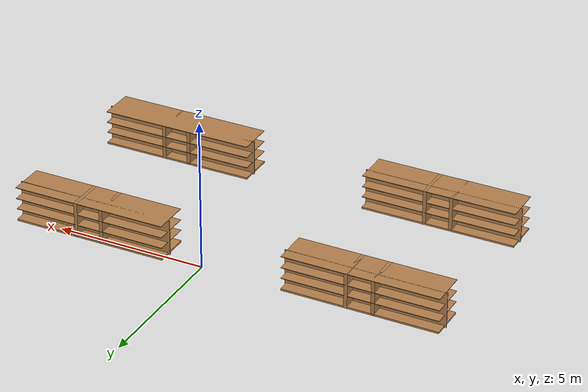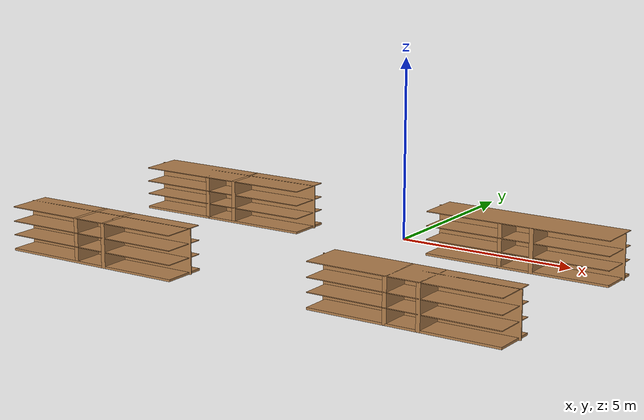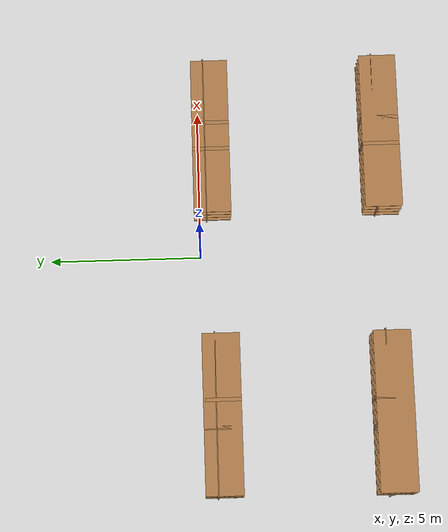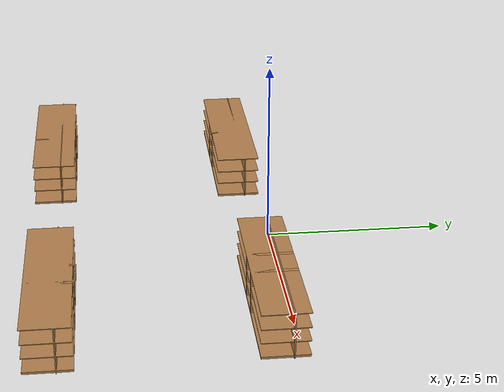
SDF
<sdf version="1.6">
 <world name="default">
  <model name="bookshelf1_clone_4_clone">
   <link name="link">
    <pose>-5.30085 4.14714 0 0 -0 0</pose>
    <inertial>
     <mass>18.106</mass>
     <inertia><ixx>0</ixx><ixy>0</ixy><ixz>0</ixz><iyy>0</iyy><iyz>0</iyz><izz>0</izz></inertia>
    </inertial>
    <velocity_decay><linear>0</linear><angular>0</angular></velocity_decay>
    <visual name="visual1">
     <pose>0 0.005 0.6 0 -0 0</pose>
     <geometry><box><size>5.34173 0.029897 1.2</size></box></geometry>
     <material>
      <script><uri>file://media/materials/scripts/gazebo.material</uri><name>Gazebo/Wood</name></script>
      <ambient>1 1 1 1</ambient>
      <diffuse>1 1 1 1</diffuse>
      <specular>0.2 0.2 0.2 1</specular>
      <emissive>0 0 0 1</emissive>
      <shader type="vertex"><normal_map>__default__</normal_map></shader>
     </material>
    </visual>
    <visual name="visual2">
     <pose>0.45 -0.195 0.6 0 -0 0</pose>
     <geometry><box><size>0.118103 1.22649 1.2</size></box></geometry>
     <material>
      <script><uri>file://media/materials/scripts/gazebo.material</uri><name>Gazebo/Wood</name></script>
      <ambient>1 1 1 1</ambient>
      <diffuse>1 1 1 1</diffuse>
      <specular>0.2 0.2 0.2 1</specular>
      <emissive>0 0 0 1</emissive>
      <shader type="vertex"><normal_map>__default__</normal_map></shader>
     </material>
    </visual>
    <visual name="visual3">
     <pose>-0.45 -0.195 0.6 0 -0 0</pose>
     <geometry><box><size>0.118103 1.22649 1.2</size></box></geometry>
     <material>
      <script><uri>file://media/materials/scripts/gazebo.material</uri><name>Gazebo/Wood</name></script>
      <ambient>1 1 1 1</ambient>
      <diffuse>1 1 1 1</diffuse>
      <specular>0.2 0.2 0.2 1</specular>
      <emissive>0 0 0 1</emissive>
      <shader type="vertex"><normal_map>__default__</normal_map></shader>
     </material>
    </visual>
    <visual name="visual4">
     <pose>0 -0.195 0.03 0 -0 0</pose>
     <geometry><box><size>5.22302 1.22649 0.06</size></box></geometry>
     <material>
      <script><uri>file://media/materials/scripts/gazebo.material</uri><name>Gazebo/Wood</name></script>
      <ambient>1 1 1 1</ambient>
      <diffuse>1 1 1 1</diffuse>
      <specular>0.2 0.2 0.2 1</specular>
      <emissive>0 0 0 1</emissive>
      <shader type="vertex"><normal_map>__default__</normal_map></shader>
     </material>
    </visual>
    <visual name="visual5">
     <pose>0 -0.195 1.19 0 -0 0</pose>
     <geometry><box><size>5.22302 1.22649 0.02</size></box></geometry>
     <material>
      <script><uri>file://media/materials/scripts/gazebo.material</uri><name>Gazebo/Wood</name></script>
      <ambient>1 1 1 1</ambient>
      <diffuse>1 1 1 1</diffuse>
      <specular>0.2 0.2 0.2 1</specular>
      <emissive>0 0 0 1</emissive>
      <shader type="vertex"><normal_map>__default__</normal_map></shader>
     </material>
    </visual>
    <visual name="visual6">
     <pose>0 -0.195 0.43 0 -0 0</pose>
     <geometry><box><size>5.22302 1.22649 0.02</size></box></geometry>
     <material>
      <script><uri>file://media/materials/scripts/gazebo.material</uri><name>Gazebo/Wood</name></script>
      <ambient>1 1 1 1</ambient>
      <diffuse>1 1 1 1</diffuse>
      <specular>0.2 0.2 0.2 1</specular>
      <emissive>0 0 0 1</emissive>
      <shader type="vertex"><normal_map>__default__</normal_map></shader>
     </material>
    </visual>
    <visual name="visual7">
     <pose>0 -0.195 0.8 0 -0 0</pose>
     <geometry><box><size>5.22302 1.22649 0.02</size></box></geometry>
     <material>
      <script><uri>file://media/materials/scripts/gazebo.material</uri><name>Gazebo/Wood</name></script>
      <ambient>1 1 1 1</ambient>
      <diffuse>1 1 1 1</diffuse>
      <specular>0.2 0.2 0.2 1</specular>
      <emissive>0 0 0 1</emissive>
      <shader type="vertex"><normal_map>__default__</normal_map></shader>
     </material>
    </visual>
    <collision name="left_side">
     <pose>0.45 -0.195 0.6 0 -0 0</pose>
     <geometry><box><size>0.118103 1.22649 1.2</size></box></geometry>
     <surface>
      <friction>
       <ode><mu>1</mu><mu2>1</mu2><fdir1>0 0 0</fdir1><slip1>0</slip1><slip2>0</slip2></ode>
       <torsional>
        <coefficient>1</coefficient>
        <patch_radius>0</patch_radius>
        <surface_radius>0</surface_radius>
        <use_patch_radius>1</use_patch_radius>
        <ode><slip>0</slip></ode>
       </torsional>
      </friction>
      <bounce><restitution_coefficient>0</restitution_coefficient><threshold>1e+06</threshold></bounce>
      <contact>
       <collide_without_contact>0</collide_without_contact>
       <collide_without_contact_bitmask>1</collide_without_contact_bitmask>
       <collide_bitmask>1</collide_bitmask>
       <ode>
        <soft_cfm>0</soft_cfm>
        <soft_erp>0.2</soft_erp>
        <kp>1e+13</kp>
        <kd>1</kd>
        <max_vel>0.01</max_vel>
        <min_depth>0</min_depth>
       </ode>
       <bullet>
        <split_impulse>1</split_impulse>
        <split_impulse_penetration_threshold>-0.01</split_impulse_penetration_threshold>
        <soft_cfm>0</soft_cfm>
        <soft_erp>0.2</soft_erp>
        <kp>1e+13</kp>
        <kd>1</kd>
       </bullet>
      </contact>
     </surface>
    </collision>
    <collision name="back">
     <pose>0 0.005 0.6 0 -0 0</pose>
     <geometry><box><size>5.34173 0.029897 1.2</size></box></geometry>
     <surface>
      <friction>
       <ode><mu>1</mu><mu2>1</mu2><fdir1>0 0 0</fdir1><slip1>0</slip1><slip2>0</slip2></ode>
       <torsional>
        <coefficient>1</coefficient>
        <patch_radius>0</patch_radius>
        <surface_radius>0</surface_radius>
        <use_patch_radius>1</use_patch_radius>
        <ode><slip>0</slip></ode>
       </torsional>
      </friction>
      <bounce><restitution_coefficient>0</restitution_coefficient><threshold>1e+06</threshold></bounce>
      <contact>
       <collide_without_contact>0</collide_without_contact>
       <collide_without_contact_bitmask>1</collide_without_contact_bitmask>
       <collide_bitmask>1</collide_bitmask>
       <ode>
        <soft_cfm>0</soft_cfm>
        <soft_erp>0.2</soft_erp>
        <kp>1e+13</kp>
        <kd>1</kd>
        <max_vel>0.01</max_vel>
        <min_depth>0</min_depth>
       </ode>
       <bullet>
        <split_impulse>1</split_impulse>
        <split_impulse_penetration_threshold>-0.01</split_impulse_penetration_threshold>
        <soft_cfm>0</soft_cfm>
        <soft_erp>0.2</soft_erp>
        <kp>1e+13</kp>
        <kd>1</kd>
       </bullet>
      </contact>
     </surface>
    </collision>
    <collision name="right_side">
     <pose>-0.45 -0.195 0.6 0 -0 0</pose>
     <geometry><box><size>0.118103 1.22649 1.2</size></box></geometry>
     <surface>
      <friction>
       <ode><mu>1</mu><mu2>1</mu2><fdir1>0 0 0</fdir1><slip1>0</slip1><slip2>0</slip2></ode>
       <torsional>
        <coefficient>1</coefficient>
        <patch_radius>0</patch_radius>
        <surface_radius>0</surface_radius>
        <use_patch_radius>1</use_patch_radius>
        <ode><slip>0</slip></ode>
       </torsional>
      </friction>
      <bounce><restitution_coefficient>0</restitution_coefficient><threshold>1e+06</threshold></bounce>
      <contact>
       <collide_without_contact>0</collide_without_contact>
       <collide_without_contact_bitmask>1</collide_without_contact_bitmask>
       <collide_bitmask>1</collide_bitmask>
       <ode>
        <soft_cfm>0</soft_cfm>
        <soft_erp>0.2</soft_erp>
        <kp>1e+13</kp>
        <kd>1</kd>
        <max_vel>0.01</max_vel>
        <min_depth>0</min_depth>
       </ode>
       <bullet>
        <split_impulse>1</split_impulse>
        <split_impulse_penetration_threshold>-0.01</split_impulse_penetration_threshold>
        <soft_cfm>0</soft_cfm>
        <soft_erp>0.2</soft_erp>
        <kp>1e+13</kp>
        <kd>1</kd>
       </bullet>
      </contact>
     </surface>
    </collision>
    <collision name="bottom">
     <pose>0 -0.195 0.03 0 -0 0</pose>
     <geometry><box><size>5.22302 1.22649 0.06</size></box></geometry>
     <surface>
      <friction>
       <ode><mu>1</mu><mu2>1</mu2><fdir1>0 0 0</fdir1><slip1>0</slip1><slip2>0</slip2></ode>
       <torsional>
        <coefficient>1</coefficient>
        <patch_radius>0</patch_radius>
        <surface_radius>0</surface_radius>
        <use_patch_radius>1</use_patch_radius>
        <ode><slip>0</slip></ode>
       </torsional>
      </friction>
      <bounce><restitution_coefficient>0</restitution_coefficient><threshold>1e+06</threshold></bounce>
      <contact>
       <collide_without_contact>0</collide_without_contact>
       <collide_without_contact_bitmask>1</collide_without_contact_bitmask>
       <collide_bitmask>1</collide_bitmask>
       <ode>
        <soft_cfm>0</soft_cfm>
        <soft_erp>0.2</soft_erp>
        <kp>1e+13</kp>
        <kd>1</kd>
        <max_vel>0.01</max_vel>
        <min_depth>0</min_depth>
       </ode>
       <bullet>
        <split_impulse>1</split_impulse>
        <split_impulse_penetration_threshold>-0.01</split_impulse_penetration_threshold>
        <soft_cfm>0</soft_cfm>
        <soft_erp>0.2</soft_erp>
        <kp>1e+13</kp>
        <kd>1</kd>
       </bullet>
      </contact>
     </surface>
    </collision>
    <collision name="low_shelf">
     <pose>0 -0.195 0.43 0 -0 0</pose>
     <geometry><box><size>5.22302 1.22649 0.02</size></box></geometry>
     <surface>
      <friction>
       <ode><mu>1</mu><mu2>1</mu2><fdir1>0 0 0</fdir1><slip1>0</slip1><slip2>0</slip2></ode>
       <torsional>
        <coefficient>1</coefficient>
        <patch_radius>0</patch_radius>
        <surface_radius>0</surface_radius>
        <use_patch_radius>1</use_patch_radius>
        <ode><slip>0</slip></ode>
       </torsional>
      </friction>
      <bounce><restitution_coefficient>0</restitution_coefficient><threshold>1e+06</threshold></bounce>
      <contact>
       <collide_without_contact>0</collide_without_contact>
       <collide_without_contact_bitmask>1</collide_without_contact_bitmask>
       <collide_bitmask>1</collide_bitmask>
       <ode>
        <soft_cfm>0</soft_cfm>
        <soft_erp>0.2</soft_erp>
        <kp>1e+13</kp>
        <kd>1</kd>
        <max_vel>0.01</max_vel>
        <min_depth>0</min_depth>
       </ode>
       <bullet>
        <split_impulse>1</split_impulse>
        <split_impulse_penetration_threshold>-0.01</split_impulse_penetration_threshold>
        <soft_cfm>0</soft_cfm>
        <soft_erp>0.2</soft_erp>
        <kp>1e+13</kp>
        <kd>1</kd>
       </bullet>
      </contact>
     </surface>
    </collision>
    <collision name="top">
     <pose>0 -0.195 1.19 0 -0 0</pose>
     <geometry><box><size>5.22302 1.22649 0.02</size></box></geometry>
     <surface>
      <friction>
       <ode><mu>1</mu><mu2>1</mu2><fdir1>0 0 0</fdir1><slip1>0</slip1><slip2>0</slip2></ode>
       <torsional>
        <coefficient>1</coefficient>
        <patch_radius>0</patch_radius>
        <surface_radius>0</surface_radius>
        <use_patch_radius>1</use_patch_radius>
        <ode><slip>0</slip></ode>
       </torsional>
      </friction>
      <bounce><restitution_coefficient>0</restitution_coefficient><threshold>1e+06</threshold></bounce>
      <contact>
       <collide_without_contact>0</collide_without_contact>
       <collide_without_contact_bitmask>1</collide_without_contact_bitmask>
       <collide_bitmask>1</collide_bitmask>
       <ode>
        <soft_cfm>0</soft_cfm>
        <soft_erp>0.2</soft_erp>
        <kp>1e+13</kp>
        <kd>1</kd>
        <max_vel>0.01</max_vel>
        <min_depth>0</min_depth>
       </ode>
       <bullet>
        <split_impulse>1</split_impulse>
        <split_impulse_penetration_threshold>-0.01</split_impulse_penetration_threshold>
        <soft_cfm>0</soft_cfm>
        <soft_erp>0.2</soft_erp>
        <kp>1e+13</kp>
        <kd>1</kd>
       </bullet>
      </contact>
     </surface>
    </collision>
    <collision name="high_shelf">
     <pose>0 -0.195 0.8 0 -0 0</pose>
     <geometry><box><size>5.22302 1.22649 0.02</size></box></geometry>
     <surface>
      <friction>
       <ode><mu>1</mu><mu2>1</mu2><fdir1>0 0 0</fdir1><slip1>0</slip1><slip2>0</slip2></ode>
       <torsional>
        <coefficient>1</coefficient>
        <patch_radius>0</patch_radius>
        <surface_radius>0</surface_radius>
        <use_patch_radius>1</use_patch_radius>
        <ode><slip>0</slip></ode>
       </torsional>
      </friction>
      <bounce><restitution_coefficient>0</restitution_coefficient><threshold>1e+06</threshold></bounce>
      <contact>
       <collide_without_contact>0</collide_without_contact>
       <collide_without_contact_bitmask>1</collide_without_contact_bitmask>
       <collide_bitmask>1</collide_bitmask>
       <ode>
        <soft_cfm>0</soft_cfm>
        <soft_erp>0.2</soft_erp>
        <kp>1e+13</kp>
        <kd>1</kd>
        <max_vel>0.01</max_vel>
        <min_depth>0</min_depth>
       </ode>
       <bullet>
        <split_impulse>1</split_impulse>
        <split_impulse_penetration_threshold>-0.01</split_impulse_penetration_threshold>
        <soft_cfm>0</soft_cfm>
        <soft_erp>0.2</soft_erp>
        <kp>1e+13</kp>
        <kd>1</kd>
       </bullet>
      </contact>
     </surface>
    </collision>
   </link>
   <static>1</static>
   <pose>9.20317 -4.37233 0 0 -0 0</pose>
  </model>
  <model name="bookshelf1_clone_4_clone_0">
   <link name="link">
    <pose>-5.30085 4.14714 0 0 -0 0</pose>
    <inertial>
     <mass>18.106</mass>
     <inertia><ixx>0</ixx><ixy>0</ixy><ixz>0</ixz><iyy>0</iyy><iyz>0</iyz><izz>0</izz></inertia>
    </inertial>
    <velocity_decay><linear>0</linear><angular>0</angular></velocity_decay>
    <visual name="visual1">
     <pose>0 0.005 0.6 0 -0 0</pose>
     <geometry><box><size>5.34173 0.029897 1.2</size></box></geometry>
     <material>
      <script><uri>file://media/materials/scripts/gazebo.material</uri><name>Gazebo/Wood</name></script>
      <ambient>1 1 1 1</ambient>
      <diffuse>1 1 1 1</diffuse>
      <specular>0.2 0.2 0.2 1</specular>
      <emissive>0 0 0 1</emissive>
      <shader type="vertex"><normal_map>__default__</normal_map></shader>
     </material>
    </visual>
    <visual name="visual2">
     <pose>0.45 -0.195 0.6 0 -0 0</pose>
     <geometry><box><size>0.118103 1.22649 1.2</size></box></geometry>
     <material>
      <script><uri>file://media/materials/scripts/gazebo.material</uri><name>Gazebo/Wood</name></script>
      <ambient>1 1 1 1</ambient>
      <diffuse>1 1 1 1</diffuse>
      <specular>0.2 0.2 0.2 1</specular>
      <emissive>0 0 0 1</emissive>
      <shader type="vertex"><normal_map>__default__</normal_map></shader>
     </material>
    </visual>
    <visual name="visual3">
     <pose>-0.45 -0.195 0.6 0 -0 0</pose>
     <geometry><box><size>0.118103 1.22649 1.2</size></box></geometry>
     <material>
      <script><uri>file://media/materials/scripts/gazebo.material</uri><name>Gazebo/Wood</name></script>
      <ambient>1 1 1 1</ambient>
      <diffuse>1 1 1 1</diffuse>
      <specular>0.2 0.2 0.2 1</specular>
      <emissive>0 0 0 1</emissive>
      <shader type="vertex"><normal_map>__default__</normal_map></shader>
     </material>
    </visual>
    <visual name="visual4">
     <pose>0 -0.195 0.03 0 -0 0</pose>
     <geometry><box><size>5.22302 1.22649 0.06</size></box></geometry>
     <material>
      <script><uri>file://media/materials/scripts/gazebo.material</uri><name>Gazebo/Wood</name></script>
      <ambient>1 1 1 1</ambient>
      <diffuse>1 1 1 1</diffuse>
      <specular>0.2 0.2 0.2 1</specular>
      <emissive>0 0 0 1</emissive>
      <shader type="vertex"><normal_map>__default__</normal_map></shader>
     </material>
    </visual>
    <visual name="visual5">
     <pose>0 -0.195 1.19 0 -0 0</pose>
     <geometry><box><size>5.22302 1.22649 0.02</size></box></geometry>
     <material>
      <script><uri>file://media/materials/scripts/gazebo.material</uri><name>Gazebo/Wood</name></script>
      <ambient>1 1 1 1</ambient>
      <diffuse>1 1 1 1</diffuse>
      <specular>0.2 0.2 0.2 1</specular>
      <emissive>0 0 0 1</emissive>
      <shader type="vertex"><normal_map>__default__</normal_map></shader>
     </material>
    </visual>
    <visual name="visual6">
     <pose>0 -0.195 0.43 0 -0 0</pose>
     <geometry><box><size>5.22302 1.22649 0.02</size></box></geometry>
     <material>
      <script><uri>file://media/materials/scripts/gazebo.material</uri><name>Gazebo/Wood</name></script>
      <ambient>1 1 1 1</ambient>
      <diffuse>1 1 1 1</diffuse>
      <specular>0.2 0.2 0.2 1</specular>
      <emissive>0 0 0 1</emissive>
      <shader type="vertex"><normal_map>__default__</normal_map></shader>
     </material>
    </visual>
    <visual name="visual7">
     <pose>0 -0.195 0.8 0 -0 0</pose>
     <geometry><box><size>5.22302 1.22649 0.02</size></box></geometry>
     <material>
      <script><uri>file://media/materials/scripts/gazebo.material</uri><name>Gazebo/Wood</name></script>
      <ambient>1 1 1 1</ambient>
      <diffuse>1 1 1 1</diffuse>
      <specular>0.2 0.2 0.2 1</specular>
      <emissive>0 0 0 1</emissive>
      <shader type="vertex"><normal_map>__default__</normal_map></shader>
     </material>
    </visual>
    <collision name="left_side">
     <pose>0.45 -0.195 0.6 0 -0 0</pose>
     <geometry><box><size>0.118103 1.22649 1.2</size></box></geometry>
     <surface>
      <friction>
       <ode><mu>1</mu><mu2>1</mu2><fdir1>0 0 0</fdir1><slip1>0</slip1><slip2>0</slip2></ode>
       <torsional>
        <coefficient>1</coefficient>
        <patch_radius>0</patch_radius>
        <surface_radius>0</surface_radius>
        <use_patch_radius>1</use_patch_radius>
        <ode><slip>0</slip></ode>
       </torsional>
      </friction>
      <bounce><restitution_coefficient>0</restitution_coefficient><threshold>1e+06</threshold></bounce>
      <contact>
       <collide_without_contact>0</collide_without_contact>
       <collide_without_contact_bitmask>1</collide_without_contact_bitmask>
       <collide_bitmask>1</collide_bitmask>
       <ode>
        <soft_cfm>0</soft_cfm>
        <soft_erp>0.2</soft_erp>
        <kp>1e+13</kp>
        <kd>1</kd>
        <max_vel>0.01</max_vel>
        <min_depth>0</min_depth>
       </ode>
       <bullet>
        <split_impulse>1</split_impulse>
        <split_impulse_penetration_threshold>-0.01</split_impulse_penetration_threshold>
        <soft_cfm>0</soft_cfm>
        <soft_erp>0.2</soft_erp>
        <kp>1e+13</kp>
        <kd>1</kd>
       </bullet>
      </contact>
     </surface>
    </collision>
    <collision name="back">
     <pose>0 0.005 0.6 0 -0 0</pose>
     <geometry><box><size>5.34173 0.029897 1.2</size></box></geometry>
     <surface>
      <friction>
       <ode><mu>1</mu><mu2>1</mu2><fdir1>0 0 0</fdir1><slip1>0</slip1><slip2>0</slip2></ode>
       <torsional>
        <coefficient>1</coefficient>
        <patch_radius>0</patch_radius>
        <surface_radius>0</surface_radius>
        <use_patch_radius>1</use_patch_radius>
        <ode><slip>0</slip></ode>
       </torsional>
      </friction>
      <bounce><restitution_coefficient>0</restitution_coefficient><threshold>1e+06</threshold></bounce>
      <contact>
       <collide_without_contact>0</collide_without_contact>
       <collide_without_contact_bitmask>1</collide_without_contact_bitmask>
       <collide_bitmask>1</collide_bitmask>
       <ode>
        <soft_cfm>0</soft_cfm>
        <soft_erp>0.2</soft_erp>
        <kp>1e+13</kp>
        <kd>1</kd>
        <max_vel>0.01</max_vel>
        <min_depth>0</min_depth>
       </ode>
       <bullet>
        <split_impulse>1</split_impulse>
        <split_impulse_penetration_threshold>-0.01</split_impulse_penetration_threshold>
        <soft_cfm>0</soft_cfm>
        <soft_erp>0.2</soft_erp>
        <kp>1e+13</kp>
        <kd>1</kd>
       </bullet>
      </contact>
     </surface>
    </collision>
    <collision name="right_side">
     <pose>-0.45 -0.195 0.6 0 -0 0</pose>
     <geometry><box><size>0.118103 1.22649 1.2</size></box></geometry>
     <surface>
      <friction>
       <ode><mu>1</mu><mu2>1</mu2><fdir1>0 0 0</fdir1><slip1>0</slip1><slip2>0</slip2></ode>
       <torsional>
        <coefficient>1</coefficient>
        <patch_radius>0</patch_radius>
        <surface_radius>0</surface_radius>
        <use_patch_radius>1</use_patch_radius>
        <ode><slip>0</slip></ode>
       </torsional>
      </friction>
      <bounce><restitution_coefficient>0</restitution_coefficient><threshold>1e+06</threshold></bounce>
      <contact>
       <collide_without_contact>0</collide_without_contact>
       <collide_without_contact_bitmask>1</collide_without_contact_bitmask>
       <collide_bitmask>1</collide_bitmask>
       <ode>
        <soft_cfm>0</soft_cfm>
        <soft_erp>0.2</soft_erp>
        <kp>1e+13</kp>
        <kd>1</kd>
        <max_vel>0.01</max_vel>
        <min_depth>0</min_depth>
       </ode>
       <bullet>
        <split_impulse>1</split_impulse>
        <split_impulse_penetration_threshold>-0.01</split_impulse_penetration_threshold>
        <soft_cfm>0</soft_cfm>
        <soft_erp>0.2</soft_erp>
        <kp>1e+13</kp>
        <kd>1</kd>
       </bullet>
      </contact>
     </surface>
    </collision>
    <collision name="bottom">
     <pose>0 -0.195 0.03 0 -0 0</pose>
     <geometry><box><size>5.22302 1.22649 0.06</size></box></geometry>
     <surface>
      <friction>
       <ode><mu>1</mu><mu2>1</mu2><fdir1>0 0 0</fdir1><slip1>0</slip1><slip2>0</slip2></ode>
       <torsional>
        <coefficient>1</coefficient>
        <patch_radius>0</patch_radius>
        <surface_radius>0</surface_radius>
        <use_patch_radius>1</use_patch_radius>
        <ode><slip>0</slip></ode>
       </torsional>
      </friction>
      <bounce><restitution_coefficient>0</restitution_coefficient><threshold>1e+06</threshold></bounce>
      <contact>
       <collide_without_contact>0</collide_without_contact>
       <collide_without_contact_bitmask>1</collide_without_contact_bitmask>
       <collide_bitmask>1</collide_bitmask>
       <ode>
        <soft_cfm>0</soft_cfm>
        <soft_erp>0.2</soft_erp>
        <kp>1e+13</kp>
        <kd>1</kd>
        <max_vel>0.01</max_vel>
        <min_depth>0</min_depth>
       </ode>
       <bullet>
        <split_impulse>1</split_impulse>
        <split_impulse_penetration_threshold>-0.01</split_impulse_penetration_threshold>
        <soft_cfm>0</soft_cfm>
        <soft_erp>0.2</soft_erp>
        <kp>1e+13</kp>
        <kd>1</kd>
       </bullet>
      </contact>
     </surface>
    </collision>
    <collision name="low_shelf">
     <pose>0 -0.195 0.43 0 -0 0</pose>
     <geometry><box><size>5.22302 1.22649 0.02</size></box></geometry>
     <surface>
      <friction>
       <ode><mu>1</mu><mu2>1</mu2><fdir1>0 0 0</fdir1><slip1>0</slip1><slip2>0</slip2></ode>
       <torsional>
        <coefficient>1</coefficient>
        <patch_radius>0</patch_radius>
        <surface_radius>0</surface_radius>
        <use_patch_radius>1</use_patch_radius>
        <ode><slip>0</slip></ode>
       </torsional>
      </friction>
      <bounce><restitution_coefficient>0</restitution_coefficient><threshold>1e+06</threshold></bounce>
      <contact>
       <collide_without_contact>0</collide_without_contact>
       <collide_without_contact_bitmask>1</collide_without_contact_bitmask>
       <collide_bitmask>1</collide_bitmask>
       <ode>
        <soft_cfm>0</soft_cfm>
        <soft_erp>0.2</soft_erp>
        <kp>1e+13</kp>
        <kd>1</kd>
        <max_vel>0.01</max_vel>
        <min_depth>0</min_depth>
       </ode>
       <bullet>
        <split_impulse>1</split_impulse>
        <split_impulse_penetration_threshold>-0.01</split_impulse_penetration_threshold>
        <soft_cfm>0</soft_cfm>
        <soft_erp>0.2</soft_erp>
        <kp>1e+13</kp>
        <kd>1</kd>
       </bullet>
      </contact>
     </surface>
    </collision>
    <collision name="top">
     <pose>0 -0.195 1.19 0 -0 0</pose>
     <geometry><box><size>5.22302 1.22649 0.02</size></box></geometry>
     <surface>
      <friction>
       <ode><mu>1</mu><mu2>1</mu2><fdir1>0 0 0</fdir1><slip1>0</slip1><slip2>0</slip2></ode>
       <torsional>
        <coefficient>1</coefficient>
        <patch_radius>0</patch_radius>
        <surface_radius>0</surface_radius>
        <use_patch_radius>1</use_patch_radius>
        <ode><slip>0</slip></ode>
       </torsional>
      </friction>
      <bounce><restitution_coefficient>0</restitution_coefficient><threshold>1e+06</threshold></bounce>
      <contact>
       <collide_without_contact>0</collide_without_contact>
       <collide_without_contact_bitmask>1</collide_without_contact_bitmask>
       <collide_bitmask>1</collide_bitmask>
       <ode>
        <soft_cfm>0</soft_cfm>
        <soft_erp>0.2</soft_erp>
        <kp>1e+13</kp>
        <kd>1</kd>
        <max_vel>0.01</max_vel>
        <min_depth>0</min_depth>
       </ode>
       <bullet>
        <split_impulse>1</split_impulse>
        <split_impulse_penetration_threshold>-0.01</split_impulse_penetration_threshold>
        <soft_cfm>0</soft_cfm>
        <soft_erp>0.2</soft_erp>
        <kp>1e+13</kp>
        <kd>1</kd>
       </bullet>
      </contact>
     </surface>
    </collision>
    <collision name="high_shelf">
     <pose>0 -0.195 0.8 0 -0 0</pose>
     <geometry><box><size>5.22302 1.22649 0.02</size></box></geometry>
     <surface>
      <friction>
       <ode><mu>1</mu><mu2>1</mu2><fdir1>0 0 0</fdir1><slip1>0</slip1><slip2>0</slip2></ode>
       <torsional>
        <coefficient>1</coefficient>
        <patch_radius>0</patch_radius>
        <surface_radius>0</surface_radius>
        <use_patch_radius>1</use_patch_radius>
        <ode><slip>0</slip></ode>
       </torsional>
      </friction>
      <bounce><restitution_coefficient>0</restitution_coefficient><threshold>1e+06</threshold></bounce>
      <contact>
       <collide_without_contact>0</collide_without_contact>
       <collide_without_contact_bitmask>1</collide_without_contact_bitmask>
       <collide_bitmask>1</collide_bitmask>
       <ode>
        <soft_cfm>0</soft_cfm>
        <soft_erp>0.2</soft_erp>
        <kp>1e+13</kp>
        <kd>1</kd>
        <max_vel>0.01</max_vel>
        <min_depth>0</min_depth>
       </ode>
       <bullet>
        <split_impulse>1</split_impulse>
        <split_impulse_penetration_threshold>-0.01</split_impulse_penetration_threshold>
        <soft_cfm>0</soft_cfm>
        <soft_erp>0.2</soft_erp>
        <kp>1e+13</kp>
        <kd>1</kd>
       </bullet>
      </contact>
     </surface>
    </collision>
   </link>
   <static>1</static>
   <pose>9.24091 -10.0132 0 0 -0 0</pose>
  </model>
  <model name="bookshelf1_clone_4_clone_1">
   <link name="link">
    <pose>-5.30085 4.14714 0 0 -0 0</pose>
    <inertial>
     <mass>18.106</mass>
     <inertia><ixx>0</ixx><ixy>0</ixy><ixz>0</ixz><iyy>0</iyy><iyz>0</iyz><izz>0</izz></inertia>
    </inertial>
    <velocity_decay><linear>0</linear><angular>0</angular></velocity_decay>
    <visual name="visual1">
     <pose>0 0.005 0.6 0 -0 0</pose>
     <geometry><box><size>5.34173 0.029897 1.2</size></box></geometry>
     <material>
      <script><uri>file://media/materials/scripts/gazebo.material</uri><name>Gazebo/Wood</name></script>
      <ambient>1 1 1 1</ambient>
      <diffuse>1 1 1 1</diffuse>
      <specular>0.2 0.2 0.2 1</specular>
      <emissive>0 0 0 1</emissive>
      <shader type="vertex"><normal_map>__default__</normal_map></shader>
     </material>
    </visual>
    <visual name="visual2">
     <pose>0.45 -0.195 0.6 0 -0 0</pose>
     <geometry><box><size>0.118103 1.22649 1.2</size></box></geometry>
     <material>
      <script><uri>file://media/materials/scripts/gazebo.material</uri><name>Gazebo/Wood</name></script>
      <ambient>1 1 1 1</ambient>
      <diffuse>1 1 1 1</diffuse>
      <specular>0.2 0.2 0.2 1</specular>
      <emissive>0 0 0 1</emissive>
      <shader type="vertex"><normal_map>__default__</normal_map></shader>
     </material>
    </visual>
    <visual name="visual3">
     <pose>-0.45 -0.195 0.6 0 -0 0</pose>
     <geometry><box><size>0.118103 1.22649 1.2</size></box></geometry>
     <material>
      <script><uri>file://media/materials/scripts/gazebo.material</uri><name>Gazebo/Wood</name></script>
      <ambient>1 1 1 1</ambient>
      <diffuse>1 1 1 1</diffuse>
      <specular>0.2 0.2 0.2 1</specular>
      <emissive>0 0 0 1</emissive>
      <shader type="vertex"><normal_map>__default__</normal_map></shader>
     </material>
    </visual>
    <visual name="visual4">
     <pose>0 -0.195 0.03 0 -0 0</pose>
     <geometry><box><size>5.22302 1.22649 0.06</size></box></geometry>
     <material>
      <script><uri>file://media/materials/scripts/gazebo.material</uri><name>Gazebo/Wood</name></script>
      <ambient>1 1 1 1</ambient>
      <diffuse>1 1 1 1</diffuse>
      <specular>0.2 0.2 0.2 1</specular>
      <emissive>0 0 0 1</emissive>
      <shader type="vertex"><normal_map>__default__</normal_map></shader>
     </material>
    </visual>
    <visual name="visual5">
     <pose>0 -0.195 1.19 0 -0 0</pose>
     <geometry><box><size>5.22302 1.22649 0.02</size></box></geometry>
     <material>
      <script><uri>file://media/materials/scripts/gazebo.material</uri><name>Gazebo/Wood</name></script>
      <ambient>1 1 1 1</ambient>
      <diffuse>1 1 1 1</diffuse>
      <specular>0.2 0.2 0.2 1</specular>
      <emissive>0 0 0 1</emissive>
      <shader type="vertex"><normal_map>__default__</normal_map></shader>
     </material>
    </visual>
    <visual name="visual6">
     <pose>0 -0.195 0.43 0 -0 0</pose>
     <geometry><box><size>5.22302 1.22649 0.02</size></box></geometry>
     <material>
      <script><uri>file://media/materials/scripts/gazebo.material</uri><name>Gazebo/Wood</name></script>
      <ambient>1 1 1 1</ambient>
      <diffuse>1 1 1 1</diffuse>
      <specular>0.2 0.2 0.2 1</specular>
      <emissive>0 0 0 1</emissive>
      <shader type="vertex"><normal_map>__default__</normal_map></shader>
     </material>
    </visual>
    <visual name="visual7">
     <pose>0 -0.195 0.8 0 -0 0</pose>
     <geometry><box><size>5.22302 1.22649 0.02</size></box></geometry>
     <material>
      <script><uri>file://media/materials/scripts/gazebo.material</uri><name>Gazebo/Wood</name></script>
      <ambient>1 1 1 1</ambient>
      <diffuse>1 1 1 1</diffuse>
      <specular>0.2 0.2 0.2 1</specular>
      <emissive>0 0 0 1</emissive>
      <shader type="vertex"><normal_map>__default__</normal_map></shader>
     </material>
    </visual>
    <collision name="left_side">
     <pose>0.45 -0.195 0.6 0 -0 0</pose>
     <geometry><box><size>0.118103 1.22649 1.2</size></box></geometry>
     <surface>
      <friction>
       <ode><mu>1</mu><mu2>1</mu2><fdir1>0 0 0</fdir1><slip1>0</slip1><slip2>0</slip2></ode>
       <torsional>
        <coefficient>1</coefficient>
        <patch_radius>0</patch_radius>
        <surface_radius>0</surface_radius>
        <use_patch_radius>1</use_patch_radius>
        <ode><slip>0</slip></ode>
       </torsional>
      </friction>
      <bounce><restitution_coefficient>0</restitution_coefficient><threshold>1e+06</threshold></bounce>
      <contact>
       <collide_without_contact>0</collide_without_contact>
       <collide_without_contact_bitmask>1</collide_without_contact_bitmask>
       <collide_bitmask>1</collide_bitmask>
       <ode>
        <soft_cfm>0</soft_cfm>
        <soft_erp>0.2</soft_erp>
        <kp>1e+13</kp>
        <kd>1</kd>
        <max_vel>0.01</max_vel>
        <min_depth>0</min_depth>
       </ode>
       <bullet>
        <split_impulse>1</split_impulse>
        <split_impulse_penetration_threshold>-0.01</split_impulse_penetration_threshold>
        <soft_cfm>0</soft_cfm>
        <soft_erp>0.2</soft_erp>
        <kp>1e+13</kp>
        <kd>1</kd>
       </bullet>
      </contact>
     </surface>
    </collision>
    <collision name="back">
     <pose>0 0.005 0.6 0 -0 0</pose>
     <geometry><box><size>5.34173 0.029897 1.2</size></box></geometry>
     <surface>
      <friction>
       <ode><mu>1</mu><mu2>1</mu2><fdir1>0 0 0</fdir1><slip1>0</slip1><slip2>0</slip2></ode>
       <torsional>
        <coefficient>1</coefficient>
        <patch_radius>0</patch_radius>
        <surface_radius>0</surface_radius>
        <use_patch_radius>1</use_patch_radius>
        <ode><slip>0</slip></ode>
       </torsional>
      </friction>
      <bounce><restitution_coefficient>0</restitution_coefficient><threshold>1e+06</threshold></bounce>
      <contact>
       <collide_without_contact>0</collide_without_contact>
       <collide_without_contact_bitmask>1</collide_without_contact_bitmask>
       <collide_bitmask>1</collide_bitmask>
       <ode>
        <soft_cfm>0</soft_cfm>
        <soft_erp>0.2</soft_erp>
        <kp>1e+13</kp>
        <kd>1</kd>
        <max_vel>0.01</max_vel>
        <min_depth>0</min_depth>
       </ode>
       <bullet>
        <split_impulse>1</split_impulse>
        <split_impulse_penetration_threshold>-0.01</split_impulse_penetration_threshold>
        <soft_cfm>0</soft_cfm>
        <soft_erp>0.2</soft_erp>
        <kp>1e+13</kp>
        <kd>1</kd>
       </bullet>
      </contact>
     </surface>
    </collision>
    <collision name="right_side">
     <pose>-0.45 -0.195 0.6 0 -0 0</pose>
     <geometry><box><size>0.118103 1.22649 1.2</size></box></geometry>
     <surface>
      <friction>
       <ode><mu>1</mu><mu2>1</mu2><fdir1>0 0 0</fdir1><slip1>0</slip1><slip2>0</slip2></ode>
       <torsional>
        <coefficient>1</coefficient>
        <patch_radius>0</patch_radius>
        <surface_radius>0</surface_radius>
        <use_patch_radius>1</use_patch_radius>
        <ode><slip>0</slip></ode>
       </torsional>
      </friction>
      <bounce><restitution_coefficient>0</restitution_coefficient><threshold>1e+06</threshold></bounce>
      <contact>
       <collide_without_contact>0</collide_without_contact>
       <collide_without_contact_bitmask>1</collide_without_contact_bitmask>
       <collide_bitmask>1</collide_bitmask>
       <ode>
        <soft_cfm>0</soft_cfm>
        <soft_erp>0.2</soft_erp>
        <kp>1e+13</kp>
        <kd>1</kd>
        <max_vel>0.01</max_vel>
        <min_depth>0</min_depth>
       </ode>
       <bullet>
        <split_impulse>1</split_impulse>
        <split_impulse_penetration_threshold>-0.01</split_impulse_penetration_threshold>
        <soft_cfm>0</soft_cfm>
        <soft_erp>0.2</soft_erp>
        <kp>1e+13</kp>
        <kd>1</kd>
       </bullet>
      </contact>
     </surface>
    </collision>
    <collision name="bottom">
     <pose>0 -0.195 0.03 0 -0 0</pose>
     <geometry><box><size>5.22302 1.22649 0.06</size></box></geometry>
     <surface>
      <friction>
       <ode><mu>1</mu><mu2>1</mu2><fdir1>0 0 0</fdir1><slip1>0</slip1><slip2>0</slip2></ode>
       <torsional>
        <coefficient>1</coefficient>
        <patch_radius>0</patch_radius>
        <surface_radius>0</surface_radius>
        <use_patch_radius>1</use_patch_radius>
        <ode><slip>0</slip></ode>
       </torsional>
      </friction>
      <bounce><restitution_coefficient>0</restitution_coefficient><threshold>1e+06</threshold></bounce>
      <contact>
       <collide_without_contact>0</collide_without_contact>
       <collide_without_contact_bitmask>1</collide_without_contact_bitmask>
       <collide_bitmask>1</collide_bitmask>
       <ode>
        <soft_cfm>0</soft_cfm>
        <soft_erp>0.2</soft_erp>
        <kp>1e+13</kp>
        <kd>1</kd>
        <max_vel>0.01</max_vel>
        <min_depth>0</min_depth>
       </ode>
       <bullet>
        <split_impulse>1</split_impulse>
        <split_impulse_penetration_threshold>-0.01</split_impulse_penetration_threshold>
        <soft_cfm>0</soft_cfm>
        <soft_erp>0.2</soft_erp>
        <kp>1e+13</kp>
        <kd>1</kd>
       </bullet>
      </contact>
     </surface>
    </collision>
    <collision name="low_shelf">
     <pose>0 -0.195 0.43 0 -0 0</pose>
     <geometry><box><size>5.22302 1.22649 0.02</size></box></geometry>
     <surface>
      <friction>
       <ode><mu>1</mu><mu2>1</mu2><fdir1>0 0 0</fdir1><slip1>0</slip1><slip2>0</slip2></ode>
       <torsional>
        <coefficient>1</coefficient>
        <patch_radius>0</patch_radius>
        <surface_radius>0</surface_radius>
        <use_patch_radius>1</use_patch_radius>
        <ode><slip>0</slip></ode>
       </torsional>
      </friction>
      <bounce><restitution_coefficient>0</restitution_coefficient><threshold>1e+06</threshold></bounce>
      <contact>
       <collide_without_contact>0</collide_without_contact>
       <collide_without_contact_bitmask>1</collide_without_contact_bitmask>
       <collide_bitmask>1</collide_bitmask>
       <ode>
        <soft_cfm>0</soft_cfm>
        <soft_erp>0.2</soft_erp>
        <kp>1e+13</kp>
        <kd>1</kd>
        <max_vel>0.01</max_vel>
        <min_depth>0</min_depth>
       </ode>
       <bullet>
        <split_impulse>1</split_impulse>
        <split_impulse_penetration_threshold>-0.01</split_impulse_penetration_threshold>
        <soft_cfm>0</soft_cfm>
        <soft_erp>0.2</soft_erp>
        <kp>1e+13</kp>
        <kd>1</kd>
       </bullet>
      </contact>
     </surface>
    </collision>
    <collision name="top">
     <pose>0 -0.195 1.19 0 -0 0</pose>
     <geometry><box><size>5.22302 1.22649 0.02</size></box></geometry>
     <surface>
      <friction>
       <ode><mu>1</mu><mu2>1</mu2><fdir1>0 0 0</fdir1><slip1>0</slip1><slip2>0</slip2></ode>
       <torsional>
        <coefficient>1</coefficient>
        <patch_radius>0</patch_radius>
        <surface_radius>0</surface_radius>
        <use_patch_radius>1</use_patch_radius>
        <ode><slip>0</slip></ode>
       </torsional>
      </friction>
      <bounce><restitution_coefficient>0</restitution_coefficient><threshold>1e+06</threshold></bounce>
      <contact>
       <collide_without_contact>0</collide_without_contact>
       <collide_without_contact_bitmask>1</collide_without_contact_bitmask>
       <collide_bitmask>1</collide_bitmask>
       <ode>
        <soft_cfm>0</soft_cfm>
        <soft_erp>0.2</soft_erp>
        <kp>1e+13</kp>
        <kd>1</kd>
        <max_vel>0.01</max_vel>
        <min_depth>0</min_depth>
       </ode>
       <bullet>
        <split_impulse>1</split_impulse>
        <split_impulse_penetration_threshold>-0.01</split_impulse_penetration_threshold>
        <soft_cfm>0</soft_cfm>
        <soft_erp>0.2</soft_erp>
        <kp>1e+13</kp>
        <kd>1</kd>
       </bullet>
      </contact>
     </surface>
    </collision>
    <collision name="high_shelf">
     <pose>0 -0.195 0.8 0 -0 0</pose>
     <geometry><box><size>5.22302 1.22649 0.02</size></box></geometry>
     <surface>
      <friction>
       <ode><mu>1</mu><mu2>1</mu2><fdir1>0 0 0</fdir1><slip1>0</slip1><slip2>0</slip2></ode>
       <torsional>
        <coefficient>1</coefficient>
        <patch_radius>0</patch_radius>
        <surface_radius>0</surface_radius>
        <use_patch_radius>1</use_patch_radius>
        <ode><slip>0</slip></ode>
       </torsional>
      </friction>
      <bounce><restitution_coefficient>0</restitution_coefficient><threshold>1e+06</threshold></bounce>
      <contact>
       <collide_without_contact>0</collide_without_contact>
       <collide_without_contact_bitmask>1</collide_without_contact_bitmask>
       <collide_bitmask>1</collide_bitmask>
       <ode>
        <soft_cfm>0</soft_cfm>
        <soft_erp>0.2</soft_erp>
        <kp>1e+13</kp>
        <kd>1</kd>
        <max_vel>0.01</max_vel>
        <min_depth>0</min_depth>
       </ode>
       <bullet>
        <split_impulse>1</split_impulse>
        <split_impulse_penetration_threshold>-0.01</split_impulse_penetration_threshold>
        <soft_cfm>0</soft_cfm>
        <soft_erp>0.2</soft_erp>
        <kp>1e+13</kp>
        <kd>1</kd>
       </bullet>
      </contact>
     </surface>
    </collision>
   </link>
   <static>1</static>
   <pose>-0.0902 -10.0459 0 0 -0 0</pose>
  </model>
  <model name="bookshelf1_clone_4_clone_2">
   <link name="link">
    <pose>-5.30085 4.14714 0 0 -0 0</pose>
    <inertial>
     <mass>18.106</mass>
     <inertia><ixx>0</ixx><ixy>0</ixy><ixz>0</ixz><iyy>0</iyy><iyz>0</iyz><izz>0</izz></inertia>
    </inertial>
    <velocity_decay><linear>0</linear><angular>0</angular></velocity_decay>
    <visual name="visual1">
     <pose>0 0.005 0.6 0 -0 0</pose>
     <geometry><box><size>5.34173 0.029897 1.2</size></box></geometry>
     <material>
      <script><uri>file://media/materials/scripts/gazebo.material</uri><name>Gazebo/Wood</name></script>
      <ambient>1 1 1 1</ambient>
      <diffuse>1 1 1 1</diffuse>
      <specular>0.2 0.2 0.2 1</specular>
      <emissive>0 0 0 1</emissive>
      <shader type="vertex"><normal_map>__default__</normal_map></shader>
     </material>
    </visual>
    <visual name="visual2">
     <pose>0.45 -0.195 0.6 0 -0 0</pose>
     <geometry><box><size>0.118103 1.22649 1.2</size></box></geometry>
     <material>
      <script><uri>file://media/materials/scripts/gazebo.material</uri><name>Gazebo/Wood</name></script>
      <ambient>1 1 1 1</ambient>
      <diffuse>1 1 1 1</diffuse>
      <specular>0.2 0.2 0.2 1</specular>
      <emissive>0 0 0 1</emissive>
      <shader type="vertex"><normal_map>__default__</normal_map></shader>
     </material>
    </visual>
    <visual name="visual3">
     <pose>-0.45 -0.195 0.6 0 -0 0</pose>
     <geometry><box><size>0.118103 1.22649 1.2</size></box></geometry>
     <material>
      <script><uri>file://media/materials/scripts/gazebo.material</uri><name>Gazebo/Wood</name></script>
      <ambient>1 1 1 1</ambient>
      <diffuse>1 1 1 1</diffuse>
      <specular>0.2 0.2 0.2 1</specular>
      <emissive>0 0 0 1</emissive>
      <shader type="vertex"><normal_map>__default__</normal_map></shader>
     </material>
    </visual>
    <visual name="visual4">
     <pose>0 -0.195 0.03 0 -0 0</pose>
     <geometry><box><size>5.22302 1.22649 0.06</size></box></geometry>
     <material>
      <script><uri>file://media/materials/scripts/gazebo.material</uri><name>Gazebo/Wood</name></script>
      <ambient>1 1 1 1</ambient>
      <diffuse>1 1 1 1</diffuse>
      <specular>0.2 0.2 0.2 1</specular>
      <emissive>0 0 0 1</emissive>
      <shader type="vertex"><normal_map>__default__</normal_map></shader>
     </material>
    </visual>
    <visual name="visual5">
     <pose>0 -0.195 1.19 0 -0 0</pose>
     <geometry><box><size>5.22302 1.22649 0.02</size></box></geometry>
     <material>
      <script><uri>file://media/materials/scripts/gazebo.material</uri><name>Gazebo/Wood</name></script>
      <ambient>1 1 1 1</ambient>
      <diffuse>1 1 1 1</diffuse>
      <specular>0.2 0.2 0.2 1</specular>
      <emissive>0 0 0 1</emissive>
      <shader type="vertex"><normal_map>__default__</normal_map></shader>
     </material>
    </visual>
    <visual name="visual6">
     <pose>0 -0.195 0.43 0 -0 0</pose>
     <geometry><box><size>5.22302 1.22649 0.02</size></box></geometry>
     <material>
      <script><uri>file://media/materials/scripts/gazebo.material</uri><name>Gazebo/Wood</name></script>
      <ambient>1 1 1 1</ambient>
      <diffuse>1 1 1 1</diffuse>
      <specular>0.2 0.2 0.2 1</specular>
      <emissive>0 0 0 1</emissive>
      <shader type="vertex"><normal_map>__default__</normal_map></shader>
     </material>
    </visual>
    <visual name="visual7">
     <pose>0 -0.195 0.8 0 -0 0</pose>
     <geometry><box><size>5.22302 1.22649 0.02</size></box></geometry>
     <material>
      <script><uri>file://media/materials/scripts/gazebo.material</uri><name>Gazebo/Wood</name></script>
      <ambient>1 1 1 1</ambient>
      <diffuse>1 1 1 1</diffuse>
      <specular>0.2 0.2 0.2 1</specular>
      <emissive>0 0 0 1</emissive>
      <shader type="vertex"><normal_map>__default__</normal_map></shader>
     </material>
    </visual>
    <collision name="left_side">
     <pose>0.45 -0.195 0.6 0 -0 0</pose>
     <geometry><box><size>0.118103 1.22649 1.2</size></box></geometry>
     <surface>
      <friction>
       <ode><mu>1</mu><mu2>1</mu2><fdir1>0 0 0</fdir1><slip1>0</slip1><slip2>0</slip2></ode>
       <torsional>
        <coefficient>1</coefficient>
        <patch_radius>0</patch_radius>
        <surface_radius>0</surface_radius>
        <use_patch_radius>1</use_patch_radius>
        <ode><slip>0</slip></ode>
       </torsional>
      </friction>
      <bounce><restitution_coefficient>0</restitution_coefficient><threshold>1e+06</threshold></bounce>
      <contact>
       <collide_without_contact>0</collide_without_contact>
       <collide_without_contact_bitmask>1</collide_without_contact_bitmask>
       <collide_bitmask>1</collide_bitmask>
       <ode>
        <soft_cfm>0</soft_cfm>
        <soft_erp>0.2</soft_erp>
        <kp>1e+13</kp>
        <kd>1</kd>
        <max_vel>0.01</max_vel>
        <min_depth>0</min_depth>
       </ode>
       <bullet>
        <split_impulse>1</split_impulse>
        <split_impulse_penetration_threshold>-0.01</split_impulse_penetration_threshold>
        <soft_cfm>0</soft_cfm>
        <soft_erp>0.2</soft_erp>
        <kp>1e+13</kp>
        <kd>1</kd>
       </bullet>
      </contact>
     </surface>
    </collision>
    <collision name="back">
     <pose>0 0.005 0.6 0 -0 0</pose>
     <geometry><box><size>5.34173 0.029897 1.2</size></box></geometry>
     <surface>
      <friction>
       <ode><mu>1</mu><mu2>1</mu2><fdir1>0 0 0</fdir1><slip1>0</slip1><slip2>0</slip2></ode>
       <torsional>
        <coefficient>1</coefficient>
        <patch_radius>0</patch_radius>
        <surface_radius>0</surface_radius>
        <use_patch_radius>1</use_patch_radius>
        <ode><slip>0</slip></ode>
       </torsional>
      </friction>
      <bounce><restitution_coefficient>0</restitution_coefficient><threshold>1e+06</threshold></bounce>
      <contact>
       <collide_without_contact>0</collide_without_contact>
       <collide_without_contact_bitmask>1</collide_without_contact_bitmask>
       <collide_bitmask>1</collide_bitmask>
       <ode>
        <soft_cfm>0</soft_cfm>
        <soft_erp>0.2</soft_erp>
        <kp>1e+13</kp>
        <kd>1</kd>
        <max_vel>0.01</max_vel>
        <min_depth>0</min_depth>
       </ode>
       <bullet>
        <split_impulse>1</split_impulse>
        <split_impulse_penetration_threshold>-0.01</split_impulse_penetration_threshold>
        <soft_cfm>0</soft_cfm>
        <soft_erp>0.2</soft_erp>
        <kp>1e+13</kp>
        <kd>1</kd>
       </bullet>
      </contact>
     </surface>
    </collision>
    <collision name="right_side">
     <pose>-0.45 -0.195 0.6 0 -0 0</pose>
     <geometry><box><size>0.118103 1.22649 1.2</size></box></geometry>
     <surface>
      <friction>
       <ode><mu>1</mu><mu2>1</mu2><fdir1>0 0 0</fdir1><slip1>0</slip1><slip2>0</slip2></ode>
       <torsional>
        <coefficient>1</coefficient>
        <patch_radius>0</patch_radius>
        <surface_radius>0</surface_radius>
        <use_patch_radius>1</use_patch_radius>
        <ode><slip>0</slip></ode>
       </torsional>
      </friction>
      <bounce><restitution_coefficient>0</restitution_coefficient><threshold>1e+06</threshold></bounce>
      <contact>
       <collide_without_contact>0</collide_without_contact>
       <collide_without_contact_bitmask>1</collide_without_contact_bitmask>
       <collide_bitmask>1</collide_bitmask>
       <ode>
        <soft_cfm>0</soft_cfm>
        <soft_erp>0.2</soft_erp>
        <kp>1e+13</kp>
        <kd>1</kd>
        <max_vel>0.01</max_vel>
        <min_depth>0</min_depth>
       </ode>
       <bullet>
        <split_impulse>1</split_impulse>
        <split_impulse_penetration_threshold>-0.01</split_impulse_penetration_threshold>
        <soft_cfm>0</soft_cfm>
        <soft_erp>0.2</soft_erp>
        <kp>1e+13</kp>
        <kd>1</kd>
       </bullet>
      </contact>
     </surface>
    </collision>
    <collision name="bottom">
     <pose>0 -0.195 0.03 0 -0 0</pose>
     <geometry><box><size>5.22302 1.22649 0.06</size></box></geometry>
     <surface>
      <friction>
       <ode><mu>1</mu><mu2>1</mu2><fdir1>0 0 0</fdir1><slip1>0</slip1><slip2>0</slip2></ode>
       <torsional>
        <coefficient>1</coefficient>
        <patch_radius>0</patch_radius>
        <surface_radius>0</surface_radius>
        <use_patch_radius>1</use_patch_radius>
        <ode><slip>0</slip></ode>
       </torsional>
      </friction>
      <bounce><restitution_coefficient>0</restitution_coefficient><threshold>1e+06</threshold></bounce>
      <contact>
       <collide_without_contact>0</collide_without_contact>
       <collide_without_contact_bitmask>1</collide_without_contact_bitmask>
       <collide_bitmask>1</collide_bitmask>
       <ode>
        <soft_cfm>0</soft_cfm>
        <soft_erp>0.2</soft_erp>
        <kp>1e+13</kp>
        <kd>1</kd>
        <max_vel>0.01</max_vel>
        <min_depth>0</min_depth>
       </ode>
       <bullet>
        <split_impulse>1</split_impulse>
        <split_impulse_penetration_threshold>-0.01</split_impulse_penetration_threshold>
        <soft_cfm>0</soft_cfm>
        <soft_erp>0.2</soft_erp>
        <kp>1e+13</kp>
        <kd>1</kd>
       </bullet>
      </contact>
     </surface>
    </collision>
    <collision name="low_shelf">
     <pose>0 -0.195 0.43 0 -0 0</pose>
     <geometry><box><size>5.22302 1.22649 0.02</size></box></geometry>
     <surface>
      <friction>
       <ode><mu>1</mu><mu2>1</mu2><fdir1>0 0 0</fdir1><slip1>0</slip1><slip2>0</slip2></ode>
       <torsional>
        <coefficient>1</coefficient>
        <patch_radius>0</patch_radius>
        <surface_radius>0</surface_radius>
        <use_patch_radius>1</use_patch_radius>
        <ode><slip>0</slip></ode>
       </torsional>
      </friction>
      <bounce><restitution_coefficient>0</restitution_coefficient><threshold>1e+06</threshold></bounce>
      <contact>
       <collide_without_contact>0</collide_without_contact>
       <collide_without_contact_bitmask>1</collide_without_contact_bitmask>
       <collide_bitmask>1</collide_bitmask>
       <ode>
        <soft_cfm>0</soft_cfm>
        <soft_erp>0.2</soft_erp>
        <kp>1e+13</kp>
        <kd>1</kd>
        <max_vel>0.01</max_vel>
        <min_depth>0</min_depth>
       </ode>
       <bullet>
        <split_impulse>1</split_impulse>
        <split_impulse_penetration_threshold>-0.01</split_impulse_penetration_threshold>
        <soft_cfm>0</soft_cfm>
        <soft_erp>0.2</soft_erp>
        <kp>1e+13</kp>
        <kd>1</kd>
       </bullet>
      </contact>
     </surface>
    </collision>
    <collision name="top">
     <pose>0 -0.195 1.19 0 -0 0</pose>
     <geometry><box><size>5.22302 1.22649 0.02</size></box></geometry>
     <surface>
      <friction>
       <ode><mu>1</mu><mu2>1</mu2><fdir1>0 0 0</fdir1><slip1>0</slip1><slip2>0</slip2></ode>
       <torsional>
        <coefficient>1</coefficient>
        <patch_radius>0</patch_radius>
        <surface_radius>0</surface_radius>
        <use_patch_radius>1</use_patch_radius>
        <ode><slip>0</slip></ode>
       </torsional>
      </friction>
      <bounce><restitution_coefficient>0</restitution_coefficient><threshold>1e+06</threshold></bounce>
      <contact>
       <collide_without_contact>0</collide_without_contact>
       <collide_without_contact_bitmask>1</collide_without_contact_bitmask>
       <collide_bitmask>1</collide_bitmask>
       <ode>
        <soft_cfm>0</soft_cfm>
        <soft_erp>0.2</soft_erp>
        <kp>1e+13</kp>
        <kd>1</kd>
        <max_vel>0.01</max_vel>
        <min_depth>0</min_depth>
       </ode>
       <bullet>
        <split_impulse>1</split_impulse>
        <split_impulse_penetration_threshold>-0.01</split_impulse_penetration_threshold>
        <soft_cfm>0</soft_cfm>
        <soft_erp>0.2</soft_erp>
        <kp>1e+13</kp>
        <kd>1</kd>
       </bullet>
      </contact>
     </surface>
    </collision>
    <collision name="high_shelf">
     <pose>0 -0.195 0.8 0 -0 0</pose>
     <geometry><box><size>5.22302 1.22649 0.02</size></box></geometry>
     <surface>
      <friction>
       <ode><mu>1</mu><mu2>1</mu2><fdir1>0 0 0</fdir1><slip1>0</slip1><slip2>0</slip2></ode>
       <torsional>
        <coefficient>1</coefficient>
        <patch_radius>0</patch_radius>
        <surface_radius>0</surface_radius>
        <use_patch_radius>1</use_patch_radius>
        <ode><slip>0</slip></ode>
       </torsional>
      </friction>
      <bounce><restitution_coefficient>0</restitution_coefficient><threshold>1e+06</threshold></bounce>
      <contact>
       <collide_without_contact>0</collide_without_contact>
       <collide_without_contact_bitmask>1</collide_without_contact_bitmask>
       <collide_bitmask>1</collide_bitmask>
       <ode>
        <soft_cfm>0</soft_cfm>
        <soft_erp>0.2</soft_erp>
        <kp>1e+13</kp>
        <kd>1</kd>
        <max_vel>0.01</max_vel>
        <min_depth>0</min_depth>
       </ode>
       <bullet>
        <split_impulse>1</split_impulse>
        <split_impulse_penetration_threshold>-0.01</split_impulse_penetration_threshold>
        <soft_cfm>0</soft_cfm>
        <soft_erp>0.2</soft_erp>
        <kp>1e+13</kp>
        <kd>1</kd>
       </bullet>
      </contact>
     </surface>
    </collision>
   </link>
   <static>1</static>
   <pose>-0.043 -4.51562 0 0 -0 0</pose>
  </model>
 </world>
</sdf>
